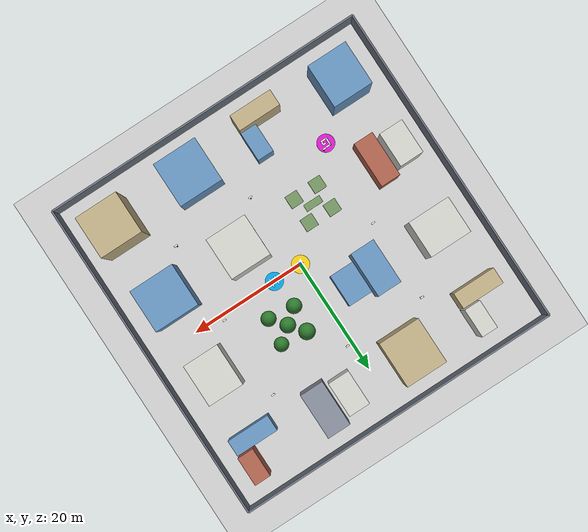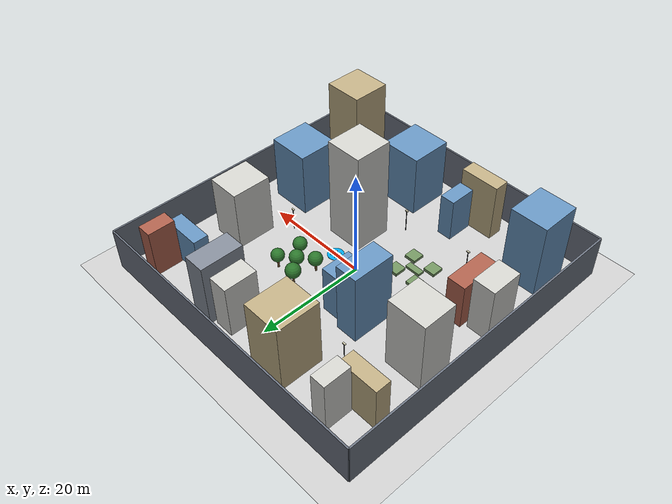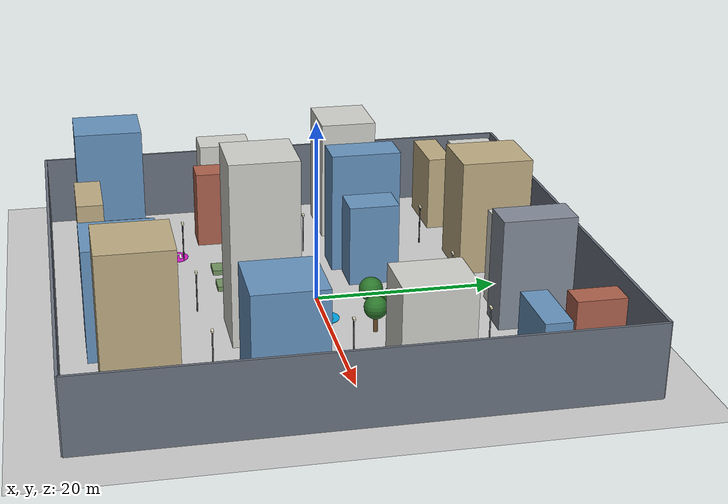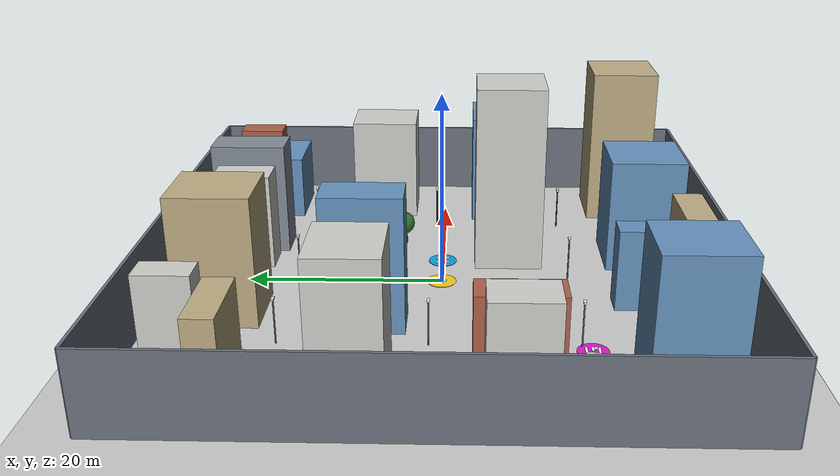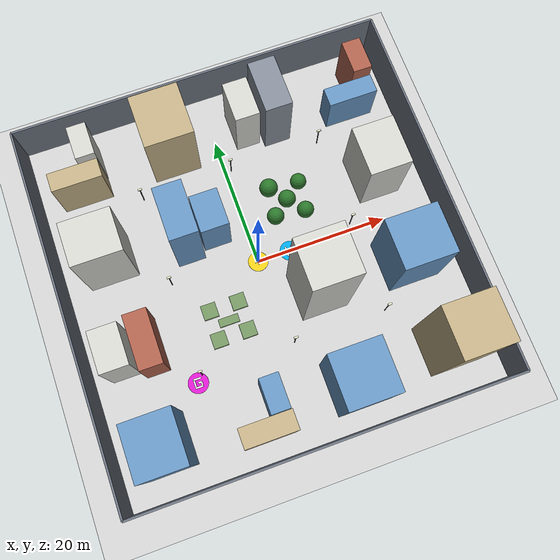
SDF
<?xml version="1.0" ?>
<sdf version="1.6">
  <world name="urban_city_course">
    <include><uri>model://sun</uri></include>
    <include><uri>model://ground_plane</uri></include>

    <!--  56m x 56m urban city blocks                            -->
    <!--  Blocks 10x10 @ {-21,-7,7,21}^2, street width 4m        -->
    <!--  Main streets: x=0 / y=0 cross, SPAWN=(0,0) intersection -->
    <!--  HOME=(5,0) [+X main street]  GOAL=(-14,-14) intersection -->
    <!--  (-7,-7)=plaza  (7,7)=park  others: single tower/twin slabs/L-shape -->

    <scene>
      <ambient>0.48 0.51 0.58 1</ambient>
      <background>0.62 0.73 0.85 1</background>
      <shadows>1</shadows>
    </scene>

    <!-- Outer perimeter walls -->
    <model name="perim_s">
      <static>true</static>
      <pose>0.000 -28.000 4.000 0 0 0</pose>
      <link name="body">
        <collision name="c"><geometry><box><size>56.000 0.300 8.000</size></box></geometry></collision>
        <visual name="v"><geometry><box><size>56.000 0.300 8.000</size></box></geometry>
          <material><ambient>0.32 0.34 0.38 1</ambient><diffuse>0.42 0.45 0.50 1</diffuse></material>
        </visual>
      </link>
    </model>
    <model name="perim_n">
      <static>true</static>
      <pose>0.000 28.000 4.000 0 0 0</pose>
      <link name="body">
        <collision name="c"><geometry><box><size>56.000 0.300 8.000</size></box></geometry></collision>
        <visual name="v"><geometry><box><size>56.000 0.300 8.000</size></box></geometry>
          <material><ambient>0.32 0.34 0.38 1</ambient><diffuse>0.42 0.45 0.50 1</diffuse></material>
        </visual>
      </link>
    </model>
    <model name="perim_w">
      <static>true</static>
      <pose>-28.000 0.000 4.000 0 0 0</pose>
      <link name="body">
        <collision name="c"><geometry><box><size>0.300 56.000 8.000</size></box></geometry></collision>
        <visual name="v"><geometry><box><size>0.300 56.000 8.000</size></box></geometry>
          <material><ambient>0.32 0.34 0.38 1</ambient><diffuse>0.42 0.45 0.50 1</diffuse></material>
        </visual>
      </link>
    </model>
    <model name="perim_e">
      <static>true</static>
      <pose>28.000 0.000 4.000 0 0 0</pose>
      <link name="body">
        <collision name="c"><geometry><box><size>0.300 56.000 8.000</size></box></geometry></collision>
        <visual name="v"><geometry><box><size>0.300 56.000 8.000</size></box></geometry>
          <material><ambient>0.32 0.34 0.38 1</ambient><diffuse>0.42 0.45 0.50 1</diffuse></material>
        </visual>
      </link>
    </model>

    <!-- Buildings (20, h 5~20m, streets kept clear) -->
    <model name="b00_tower">
      <static>true</static>
      <pose>-20.794 -20.768 7.168 0 0 0</pose>
      <link name="body">
        <collision name="c"><geometry><box><size>6.910 7.542 14.335</size></box></geometry></collision>
        <visual name="v"><geometry><box><size>6.910 7.542 14.335</size></box></geometry>
          <material><ambient>0.30 0.45 0.60 1</ambient><diffuse>0.40 0.58 0.75 1</diffuse></material>
        </visual>
      </link>
    </model>
    <model name="b01_slabA">
      <static>true</static>
      <pose>-23.200 -7.000 5.369 0 0 0</pose>
      <link name="body">
        <collision name="c"><geometry><box><size>4.124 5.987 10.737</size></box></geometry></collision>
        <visual name="v"><geometry><box><size>4.124 5.987 10.737</size></box></geometry>
          <material><ambient>0.68 0.68 0.66 1</ambient><diffuse>0.82 0.82 0.80 1</diffuse></material>
        </visual>
      </link>
    </model>
    <model name="b01_slabB">
      <static>true</static>
      <pose>-18.800 -7.000 4.387 0 0 0</pose>
      <link name="body">
        <collision name="c"><geometry><box><size>3.415 7.913 8.774</size></box></geometry></collision>
        <visual name="v"><geometry><box><size>3.415 7.913 8.774</size></box></geometry>
          <material><ambient>0.55 0.30 0.24 1</ambient><diffuse>0.68 0.38 0.30 1</diffuse></material>
        </visual>
      </link>
    </model>
    <model name="b02_tower">
      <static>true</static>
      <pose>-20.787 7.108 6.922 0 0 0</pose>
      <link name="body">
        <collision name="c"><geometry><box><size>7.232 6.339 13.843</size></box></geometry></collision>
        <visual name="v"><geometry><box><size>7.232 6.339 13.843</size></box></geometry>
          <material><ambient>0.68 0.68 0.66 1</ambient><diffuse>0.82 0.82 0.80 1</diffuse></material>
        </visual>
      </link>
    </model>
    <model name="b03_lA">
      <static>true</static>
      <pose>-21.000 18.400 4.369 0 0 0</pose>
      <link name="body">
        <collision name="c"><geometry><box><size>7.400 2.800 8.738</size></box></geometry></collision>
        <visual name="v"><geometry><box><size>7.400 2.800 8.738</size></box></geometry>
          <material><ambient>0.62 0.55 0.42 1</ambient><diffuse>0.75 0.68 0.52 1</diffuse></material>
        </visual>
      </link>
    </model>
    <model name="b03_lB">
      <static>true</static>
      <pose>-18.650 22.500 5.067 0 0 0</pose>
      <link name="body">
        <collision name="c"><geometry><box><size>2.800 5.000 10.135</size></box></geometry></collision>
        <visual name="v"><geometry><box><size>2.800 5.000 10.135</size></box></geometry>
          <material><ambient>0.68 0.68 0.66 1</ambient><diffuse>0.82 0.82 0.80 1</diffuse></material>
        </visual>
      </link>
    </model>
    <model name="b04_lA">
      <static>true</static>
      <pose>-7.000 -23.600 5.616 0 0 0</pose>
      <link name="body">
        <collision name="c"><geometry><box><size>7.400 2.800 11.231</size></box></geometry></collision>
        <visual name="v"><geometry><box><size>7.400 2.800 11.231</size></box></geometry>
          <material><ambient>0.62 0.55 0.42 1</ambient><diffuse>0.75 0.68 0.52 1</diffuse></material>
        </visual>
      </link>
    </model>
    <model name="b04_lB">
      <static>true</static>
      <pose>-4.650 -19.500 4.173 0 0 0</pose>
      <link name="body">
        <collision name="c"><geometry><box><size>2.800 5.000 8.346</size></box></geometry></collision>
        <visual name="v"><geometry><box><size>2.800 5.000 8.346</size></box></geometry>
          <material><ambient>0.30 0.45 0.60 1</ambient><diffuse>0.40 0.58 0.75 1</diffuse></material>
        </visual>
      </link>
    </model>
    <model name="b06_slabA">
      <static>true</static>
      <pose>-9.200 7.000 6.784 0 0 0</pose>
      <link name="body">
        <collision name="c"><geometry><box><size>4.142 7.753 13.568</size></box></geometry></collision>
        <visual name="v"><geometry><box><size>4.142 7.753 13.568</size></box></geometry>
          <material><ambient>0.30 0.45 0.60 1</ambient><diffuse>0.40 0.58 0.75 1</diffuse></material>
        </visual>
      </link>
    </model>
    <model name="b06_slabB">
      <static>true</static>
      <pose>-4.800 7.000 4.537 0 0 0</pose>
      <link name="body">
        <collision name="c"><geometry><box><size>4.153 5.542 9.074</size></box></geometry></collision>
        <visual name="v"><geometry><box><size>4.153 5.542 9.074</size></box></geometry>
          <material><ambient>0.30 0.45 0.60 1</ambient><diffuse>0.40 0.58 0.75 1</diffuse></material>
        </visual>
      </link>
    </model>
    <model name="b07_tower">
      <static>true</static>
      <pose>-6.842 20.983 6.545 0 0 0</pose>
      <link name="body">
        <collision name="c"><geometry><box><size>7.163 7.945 13.090</size></box></geometry></collision>
        <visual name="v"><geometry><box><size>7.163 7.945 13.090</size></box></geometry>
          <material><ambient>0.62 0.55 0.42 1</ambient><diffuse>0.75 0.68 0.52 1</diffuse></material>
        </visual>
      </link>
    </model>
    <model name="b08_tower">
      <static>true</static>
      <pose>6.885 -21.223 5.979 0 0 0</pose>
      <link name="body">
        <collision name="c"><geometry><box><size>7.631 7.761 11.959</size></box></geometry></collision>
        <visual name="v"><geometry><box><size>7.631 7.761 11.959</size></box></geometry>
          <material><ambient>0.30 0.45 0.60 1</ambient><diffuse>0.40 0.58 0.75 1</diffuse></material>
        </visual>
      </link>
    </model>
    <model name="b09_tower">
      <static>true</static>
      <pose>6.602 -6.998 9.782 0 0 0</pose>
      <link name="body">
        <collision name="c"><geometry><box><size>6.919 7.094 19.564</size></box></geometry></collision>
        <visual name="v"><geometry><box><size>6.919 7.094 19.564</size></box></geometry>
          <material><ambient>0.68 0.68 0.66 1</ambient><diffuse>0.82 0.82 0.80 1</diffuse></material>
        </visual>
      </link>
    </model>
    <model name="b11_slabA">
      <static>true</static>
      <pose>4.800 21.000 5.090 0 0 0</pose>
      <link name="body">
        <collision name="c"><geometry><box><size>3.694 6.032 10.181</size></box></geometry></collision>
        <visual name="v"><geometry><box><size>3.694 6.032 10.181</size></box></geometry>
          <material><ambient>0.68 0.68 0.66 1</ambient><diffuse>0.82 0.82 0.80 1</diffuse></material>
        </visual>
      </link>
    </model>
    <model name="b11_slabB">
      <static>true</static>
      <pose>9.200 21.000 6.019 0 0 0</pose>
      <link name="body">
        <collision name="c"><geometry><box><size>4.012 7.856 12.038</size></box></geometry></collision>
        <visual name="v"><geometry><box><size>4.012 7.856 12.038</size></box></geometry>
          <material><ambient>0.42 0.44 0.48 1</ambient><diffuse>0.52 0.55 0.60 1</diffuse></material>
        </visual>
      </link>
    </model>
    <model name="b12_tower">
      <static>true</static>
      <pose>21.199 -20.598 8.759 0 0 0</pose>
      <link name="body">
        <collision name="c"><geometry><box><size>7.332 7.240 17.518</size></box></geometry></collision>
        <visual name="v"><geometry><box><size>7.332 7.240 17.518</size></box></geometry>
          <material><ambient>0.62 0.55 0.42 1</ambient><diffuse>0.75 0.68 0.52 1</diffuse></material>
        </visual>
      </link>
    </model>
    <model name="b13_tower">
      <static>true</static>
      <pose>20.518 -6.950 6.193 0 0 0</pose>
      <link name="body">
        <collision name="c"><geometry><box><size>7.735 7.444 12.387</size></box></geometry></collision>
        <visual name="v"><geometry><box><size>7.735 7.444 12.387</size></box></geometry>
          <material><ambient>0.30 0.45 0.60 1</ambient><diffuse>0.40 0.58 0.75 1</diffuse></material>
        </visual>
      </link>
    </model>
    <model name="b14_tower">
      <static>true</static>
      <pose>20.743 7.124 5.768 0 0 0</pose>
      <link name="body">
        <collision name="c"><geometry><box><size>6.196 7.332 11.535</size></box></geometry></collision>
        <visual name="v"><geometry><box><size>6.196 7.332 11.535</size></box></geometry>
          <material><ambient>0.68 0.68 0.66 1</ambient><diffuse>0.82 0.82 0.80 1</diffuse></material>
        </visual>
      </link>
    </model>
    <model name="b15_lA">
      <static>true</static>
      <pose>21.000 18.400 3.591 0 0 0</pose>
      <link name="body">
        <collision name="c"><geometry><box><size>7.400 2.800 7.182</size></box></geometry></collision>
        <visual name="v"><geometry><box><size>7.400 2.800 7.182</size></box></geometry>
          <material><ambient>0.30 0.45 0.60 1</ambient><diffuse>0.40 0.58 0.75 1</diffuse></material>
        </visual>
      </link>
    </model>
    <model name="b15_lB">
      <static>true</static>
      <pose>23.350 22.500 4.612 0 0 0</pose>
      <link name="body">
        <collision name="c"><geometry><box><size>2.800 5.000 9.224</size></box></geometry></collision>
        <visual name="v"><geometry><box><size>2.800 5.000 9.224</size></box></geometry>
          <material><ambient>0.55 0.30 0.24 1</ambient><diffuse>0.68 0.38 0.30 1</diffuse></material>
        </visual>
      </link>
    </model>

    <!-- Plaza block (-7, -7): planters + low stage (can fly over) -->
    <model name="plaza_planter_0">
      <static>true</static>
      <pose>-9.200 -9.200 0.275 0 0 0</pose>
      <link name="body">
        <collision name="c"><geometry><box><size>2.200 2.200 0.550</size></box></geometry></collision>
        <visual name="v"><geometry><box><size>2.200 2.200 0.550</size></box></geometry>
          <material><ambient>0.35 0.45 0.30 1</ambient><diffuse>0.45 0.58 0.38 1</diffuse></material>
        </visual>
      </link>
    </model>
    <model name="plaza_planter_1">
      <static>true</static>
      <pose>-4.800 -9.200 0.275 0 0 0</pose>
      <link name="body">
        <collision name="c"><geometry><box><size>2.200 2.200 0.550</size></box></geometry></collision>
        <visual name="v"><geometry><box><size>2.200 2.200 0.550</size></box></geometry>
          <material><ambient>0.35 0.45 0.30 1</ambient><diffuse>0.45 0.58 0.38 1</diffuse></material>
        </visual>
      </link>
    </model>
    <model name="plaza_planter_2">
      <static>true</static>
      <pose>-9.200 -4.800 0.275 0 0 0</pose>
      <link name="body">
        <collision name="c"><geometry><box><size>2.200 2.200 0.550</size></box></geometry></collision>
        <visual name="v"><geometry><box><size>2.200 2.200 0.550</size></box></geometry>
          <material><ambient>0.35 0.45 0.30 1</ambient><diffuse>0.45 0.58 0.38 1</diffuse></material>
        </visual>
      </link>
    </model>
    <model name="plaza_planter_3">
      <static>true</static>
      <pose>-4.800 -4.800 0.275 0 0 0</pose>
      <link name="body">
        <collision name="c"><geometry><box><size>2.200 2.200 0.550</size></box></geometry></collision>
        <visual name="v"><geometry><box><size>2.200 2.200 0.550</size></box></geometry>
          <material><ambient>0.35 0.45 0.30 1</ambient><diffuse>0.45 0.58 0.38 1</diffuse></material>
        </visual>
      </link>
    </model>
    <model name="plaza_stage">
      <static>true</static>
      <pose>-7.000 -7.000 0.225 0 0 0</pose>
      <link name="body">
        <collision name="c"><geometry><box><size>3.000 1.200 0.450</size></box></geometry></collision>
        <visual name="v"><geometry><box><size>3.000 1.200 0.450</size></box></geometry>
          <material><ambient>0.35 0.45 0.30 1</ambient><diffuse>0.45 0.58 0.38 1</diffuse></material>
        </visual>
      </link>
    </model>

    <!-- Park block (7, 7): low trees h=3 (can fly over at 4m altitude) -->
    <model name="park_tree_0">
      <static>true</static>
      <pose>4.500 5.000 0 0 0 0</pose>
      <link name="link">
        <collision name="trunk_c">
          <pose>0 0 1.500 0 0 0</pose>
          <geometry><cylinder><radius>0.184</radius><length>3.000</length></cylinder></geometry>
        </collision>
        <visual name="trunk_v">
          <pose>0 0 1.500 0 0 0</pose>
          <geometry><cylinder><radius>0.184</radius><length>3.000</length></cylinder></geometry>
          <material><ambient>0.32 0.22 0.12 1</ambient><diffuse>0.42 0.30 0.16 1</diffuse></material>
        </visual>
        <visual name="canopy_v">
          <pose>0 0 2.744 0 0 0</pose>
          <geometry><sphere><radius>1.281</radius></sphere></geometry>
          <material><ambient>0.12 0.35 0.12 1</ambient><diffuse>0.17 0.46 0.17 1</diffuse></material>
        </visual>
      </link>
    </model>
    <model name="park_tree_1">
      <static>true</static>
      <pose>9.000 4.500 0 0 0 0</pose>
      <link name="link">
        <collision name="trunk_c">
          <pose>0 0 1.500 0 0 0</pose>
          <geometry><cylinder><radius>0.237</radius><length>3.000</length></cylinder></geometry>
        </collision>
        <visual name="trunk_v">
          <pose>0 0 1.500 0 0 0</pose>
          <geometry><cylinder><radius>0.237</radius><length>3.000</length></cylinder></geometry>
          <material><ambient>0.32 0.22 0.12 1</ambient><diffuse>0.42 0.30 0.16 1</diffuse></material>
        </visual>
        <visual name="canopy_v">
          <pose>0 0 2.749 0 0 0</pose>
          <geometry><sphere><radius>1.257</radius></sphere></geometry>
          <material><ambient>0.12 0.35 0.12 1</ambient><diffuse>0.17 0.46 0.17 1</diffuse></material>
        </visual>
      </link>
    </model>
    <model name="park_tree_2">
      <static>true</static>
      <pose>7.000 7.000 0 0 0 0</pose>
      <link name="link">
        <collision name="trunk_c">
          <pose>0 0 1.500 0 0 0</pose>
          <geometry><cylinder><radius>0.249</radius><length>3.000</length></cylinder></geometry>
        </collision>
        <visual name="trunk_v">
          <pose>0 0 1.500 0 0 0</pose>
          <geometry><cylinder><radius>0.249</radius><length>3.000</length></cylinder></geometry>
          <material><ambient>0.32 0.22 0.12 1</ambient><diffuse>0.42 0.30 0.16 1</diffuse></material>
        </visual>
        <visual name="canopy_v">
          <pose>0 0 2.739 0 0 0</pose>
          <geometry><sphere><radius>1.307</radius></sphere></geometry>
          <material><ambient>0.12 0.35 0.12 1</ambient><diffuse>0.17 0.46 0.17 1</diffuse></material>
        </visual>
      </link>
    </model>
    <model name="park_tree_3">
      <static>true</static>
      <pose>5.000 9.500 0 0 0 0</pose>
      <link name="link">
        <collision name="trunk_c">
          <pose>0 0 1.500 0 0 0</pose>
          <geometry><cylinder><radius>0.181</radius><length>3.000</length></cylinder></geometry>
        </collision>
        <visual name="trunk_v">
          <pose>0 0 1.500 0 0 0</pose>
          <geometry><cylinder><radius>0.181</radius><length>3.000</length></cylinder></geometry>
          <material><ambient>0.32 0.22 0.12 1</ambient><diffuse>0.42 0.30 0.16 1</diffuse></material>
        </visual>
        <visual name="canopy_v">
          <pose>0 0 2.725 0 0 0</pose>
          <geometry><sphere><radius>1.376</radius></sphere></geometry>
          <material><ambient>0.12 0.35 0.12 1</ambient><diffuse>0.17 0.46 0.17 1</diffuse></material>
        </visual>
      </link>
    </model>
    <model name="park_tree_4">
      <static>true</static>
      <pose>9.500 9.000 0 0 0 0</pose>
      <link name="link">
        <collision name="trunk_c">
          <pose>0 0 1.500 0 0 0</pose>
          <geometry><cylinder><radius>0.193</radius><length>3.000</length></cylinder></geometry>
        </collision>
        <visual name="trunk_v">
          <pose>0 0 1.500 0 0 0</pose>
          <geometry><cylinder><radius>0.193</radius><length>3.000</length></cylinder></geometry>
          <material><ambient>0.32 0.22 0.12 1</ambient><diffuse>0.42 0.30 0.16 1</diffuse></material>
        </visual>
        <visual name="canopy_v">
          <pose>0 0 2.759 0 0 0</pose>
          <geometry><sphere><radius>1.206</radius></sphere></geometry>
          <material><ambient>0.12 0.35 0.12 1</ambient><diffuse>0.17 0.46 0.17 1</diffuse></material>
        </visual>
      </link>
    </model>

    <!-- Street lamps (8, at intersections, pole h=4.5 has collision) -->
    <model name="lamp_00">
      <static>true</static>
      <pose>-13.100 0.900 0 0 0 0</pose>
      <link name="link">
        <collision name="pole_c">
          <pose>0 0 2.25 0 0 0</pose>
          <geometry><cylinder><radius>0.07</radius><length>4.5</length></cylinder></geometry>
        </collision>
        <visual name="pole_v">
          <pose>0 0 2.25 0 0 0</pose>
          <geometry><cylinder><radius>0.07</radius><length>4.5</length></cylinder></geometry>
          <material><ambient>0.25 0.26 0.28 1</ambient><diffuse>0.35 0.36 0.38 1</diffuse></material>
        </visual>
        <visual name="head_v">
          <pose>0 0 4.55 0 0 0</pose>
          <geometry><box><size>0.6 0.25 0.18</size></box></geometry>
          <material><ambient>0.9 0.88 0.7 1</ambient><diffuse>0.95 0.93 0.8 1</diffuse><emissive>0.5 0.48 0.3 1</emissive></material>
        </visual>
      </link>
    </model>
    <model name="lamp_01">
      <static>true</static>
      <pose>-13.100 -13.100 0 0 0 0</pose>
      <link name="link">
        <collision name="pole_c">
          <pose>0 0 2.25 0 0 0</pose>
          <geometry><cylinder><radius>0.07</radius><length>4.5</length></cylinder></geometry>
        </collision>
        <visual name="pole_v">
          <pose>0 0 2.25 0 0 0</pose>
          <geometry><cylinder><radius>0.07</radius><length>4.5</length></cylinder></geometry>
          <material><ambient>0.25 0.26 0.28 1</ambient><diffuse>0.35 0.36 0.38 1</diffuse></material>
        </visual>
        <visual name="head_v">
          <pose>0 0 4.55 0 0 0</pose>
          <geometry><box><size>0.6 0.25 0.18</size></box></geometry>
          <material><ambient>0.9 0.88 0.7 1</ambient><diffuse>0.95 0.93 0.8 1</diffuse><emissive>0.5 0.48 0.3 1</emissive></material>
        </visual>
      </link>
    </model>
    <model name="lamp_02">
      <static>true</static>
      <pose>-13.100 14.900 0 0 0 0</pose>
      <link name="link">
        <collision name="pole_c">
          <pose>0 0 2.25 0 0 0</pose>
          <geometry><cylinder><radius>0.07</radius><length>4.5</length></cylinder></geometry>
        </collision>
        <visual name="pole_v">
          <pose>0 0 2.25 0 0 0</pose>
          <geometry><cylinder><radius>0.07</radius><length>4.5</length></cylinder></geometry>
          <material><ambient>0.25 0.26 0.28 1</ambient><diffuse>0.35 0.36 0.38 1</diffuse></material>
        </visual>
        <visual name="head_v">
          <pose>0 0 4.55 0 0 0</pose>
          <geometry><box><size>0.6 0.25 0.18</size></box></geometry>
          <material><ambient>0.9 0.88 0.7 1</ambient><diffuse>0.95 0.93 0.8 1</diffuse><emissive>0.5 0.48 0.3 1</emissive></material>
        </visual>
      </link>
    </model>
    <model name="lamp_03">
      <static>true</static>
      <pose>14.900 0.900 0 0 0 0</pose>
      <link name="link">
        <collision name="pole_c">
          <pose>0 0 2.25 0 0 0</pose>
          <geometry><cylinder><radius>0.07</radius><length>4.5</length></cylinder></geometry>
        </collision>
        <visual name="pole_v">
          <pose>0 0 2.25 0 0 0</pose>
          <geometry><cylinder><radius>0.07</radius><length>4.5</length></cylinder></geometry>
          <material><ambient>0.25 0.26 0.28 1</ambient><diffuse>0.35 0.36 0.38 1</diffuse></material>
        </visual>
        <visual name="head_v">
          <pose>0 0 4.55 0 0 0</pose>
          <geometry><box><size>0.6 0.25 0.18</size></box></geometry>
          <material><ambient>0.9 0.88 0.7 1</ambient><diffuse>0.95 0.93 0.8 1</diffuse><emissive>0.5 0.48 0.3 1</emissive></material>
        </visual>
      </link>
    </model>
    <model name="lamp_04">
      <static>true</static>
      <pose>14.900 -13.100 0 0 0 0</pose>
      <link name="link">
        <collision name="pole_c">
          <pose>0 0 2.25 0 0 0</pose>
          <geometry><cylinder><radius>0.07</radius><length>4.5</length></cylinder></geometry>
        </collision>
        <visual name="pole_v">
          <pose>0 0 2.25 0 0 0</pose>
          <geometry><cylinder><radius>0.07</radius><length>4.5</length></cylinder></geometry>
          <material><ambient>0.25 0.26 0.28 1</ambient><diffuse>0.35 0.36 0.38 1</diffuse></material>
        </visual>
        <visual name="head_v">
          <pose>0 0 4.55 0 0 0</pose>
          <geometry><box><size>0.6 0.25 0.18</size></box></geometry>
          <material><ambient>0.9 0.88 0.7 1</ambient><diffuse>0.95 0.93 0.8 1</diffuse><emissive>0.5 0.48 0.3 1</emissive></material>
        </visual>
      </link>
    </model>
    <model name="lamp_05">
      <static>true</static>
      <pose>14.900 14.900 0 0 0 0</pose>
      <link name="link">
        <collision name="pole_c">
          <pose>0 0 2.25 0 0 0</pose>
          <geometry><cylinder><radius>0.07</radius><length>4.5</length></cylinder></geometry>
        </collision>
        <visual name="pole_v">
          <pose>0 0 2.25 0 0 0</pose>
          <geometry><cylinder><radius>0.07</radius><length>4.5</length></cylinder></geometry>
          <material><ambient>0.25 0.26 0.28 1</ambient><diffuse>0.35 0.36 0.38 1</diffuse></material>
        </visual>
        <visual name="head_v">
          <pose>0 0 4.55 0 0 0</pose>
          <geometry><box><size>0.6 0.25 0.18</size></box></geometry>
          <material><ambient>0.9 0.88 0.7 1</ambient><diffuse>0.95 0.93 0.8 1</diffuse><emissive>0.5 0.48 0.3 1</emissive></material>
        </visual>
      </link>
    </model>
    <model name="lamp_06">
      <static>true</static>
      <pose>0.900 -13.100 0 0 0 0</pose>
      <link name="link">
        <collision name="pole_c">
          <pose>0 0 2.25 0 0 0</pose>
          <geometry><cylinder><radius>0.07</radius><length>4.5</length></cylinder></geometry>
        </collision>
        <visual name="pole_v">
          <pose>0 0 2.25 0 0 0</pose>
          <geometry><cylinder><radius>0.07</radius><length>4.5</length></cylinder></geometry>
          <material><ambient>0.25 0.26 0.28 1</ambient><diffuse>0.35 0.36 0.38 1</diffuse></material>
        </visual>
        <visual name="head_v">
          <pose>0 0 4.55 0 0 0</pose>
          <geometry><box><size>0.6 0.25 0.18</size></box></geometry>
          <material><ambient>0.9 0.88 0.7 1</ambient><diffuse>0.95 0.93 0.8 1</diffuse><emissive>0.5 0.48 0.3 1</emissive></material>
        </visual>
      </link>
    </model>
    <model name="lamp_07">
      <static>true</static>
      <pose>0.900 14.900 0 0 0 0</pose>
      <link name="link">
        <collision name="pole_c">
          <pose>0 0 2.25 0 0 0</pose>
          <geometry><cylinder><radius>0.07</radius><length>4.5</length></cylinder></geometry>
        </collision>
        <visual name="pole_v">
          <pose>0 0 2.25 0 0 0</pose>
          <geometry><cylinder><radius>0.07</radius><length>4.5</length></cylinder></geometry>
          <material><ambient>0.25 0.26 0.28 1</ambient><diffuse>0.35 0.36 0.38 1</diffuse></material>
        </visual>
        <visual name="head_v">
          <pose>0 0 4.55 0 0 0</pose>
          <geometry><box><size>0.6 0.25 0.18</size></box></geometry>
          <material><ambient>0.9 0.88 0.7 1</ambient><diffuse>0.95 0.93 0.8 1</diffuse><emissive>0.5 0.48 0.3 1</emissive></material>
        </visual>
      </link>
    </model>

    <!-- SPAWN: (0.0,0.0) - yellow disc + white cross -->
    <model name="spawn_marker">
      <static>true</static>
      <pose>0.00 0.00 0 0 0 0</pose>
      <link name="link">
        <visual name="disc">
          <pose>0 0 0.025 0 0 0</pose>
          <geometry><cylinder><radius>1.5</radius><length>0.05</length></cylinder></geometry>
          <material>
            <ambient>0.95 0.8 0.1 1</ambient><diffuse>0.95 0.8 0.1 1</diffuse>
            <specular>0.1 0.1 0.1 1</specular><emissive>0.95 0.8 0.1 1</emissive>
          </material>
        </visual>
        <visual name="plus_h">
          <pose>0 0 0.1 0 0 0</pose>
          <geometry><box><size>1.0 0.2 0.1</size></box></geometry>
          <material><ambient>1 1 1 1</ambient><diffuse>1 1 1 1</diffuse><emissive>0.4 0.4 0.4 1</emissive></material>
        </visual>
        <visual name="plus_v">
          <pose>0 0 0.1 0 0 0</pose>
          <geometry><box><size>0.2 1.0 0.1</size></box></geometry>
          <material><ambient>1 1 1 1</ambient><diffuse>1 1 1 1</diffuse><emissive>0.4 0.4 0.4 1</emissive></material>
        </visual>
      </link>
    </model>

    <!-- HOME: (5.0,0.0) - cyan disc + white H -->
    <model name="home_marker">
      <static>true</static>
      <pose>5.00 0.00 0 0 0 0</pose>
      <link name="link">
        <visual name="disc">
          <pose>0 0 0.025 0 0 0</pose>
          <geometry><cylinder><radius>1.5</radius><length>0.05</length></cylinder></geometry>
          <material>
            <ambient>0.0 0.65 0.9 1</ambient><diffuse>0.0 0.65 0.9 1</diffuse>
            <specular>0.1 0.1 0.1 1</specular><emissive>0.0 0.65 0.9 1</emissive>
          </material>
        </visual>
        <visual name="h_left">
          <pose>-0.475 0 0.1 0 0 0</pose>
          <geometry><box><size>0.25 1.45 0.1</size></box></geometry>
          <material><ambient>1 1 1 1</ambient><diffuse>1 1 1 1</diffuse><emissive>0.4 0.4 0.4 1</emissive></material>
        </visual>
        <visual name="h_right">
          <pose>0.475 0 0.1 0 0 0</pose>
          <geometry><box><size>0.25 1.45 0.1</size></box></geometry>
          <material><ambient>1 1 1 1</ambient><diffuse>1 1 1 1</diffuse><emissive>0.4 0.4 0.4 1</emissive></material>
        </visual>
        <visual name="h_mid">
          <pose>0 0 0.1 0 0 0</pose>
          <geometry><box><size>0.7 0.25 0.1</size></box></geometry>
          <material><ambient>1 1 1 1</ambient><diffuse>1 1 1 1</diffuse><emissive>0.4 0.4 0.4 1</emissive></material>
        </visual>
      </link>
    </model>

    <!-- GOAL: (-14.0,-14.0) - magenta disc + white G -->
    <model name="goal_marker">
      <static>true</static>
      <pose>-14.00 -14.00 0 0 0 0</pose>
      <link name="link">
        <visual name="disc">
          <pose>0 0 0.025 0 0 0</pose>
          <geometry><cylinder><radius>1.5</radius><length>0.05</length></cylinder></geometry>
          <material>
            <ambient>0.85 0.1 0.8 1</ambient><diffuse>0.85 0.1 0.8 1</diffuse>
            <specular>0.1 0.1 0.1 1</specular><emissive>0.85 0.1 0.8 1</emissive>
          </material>
        </visual>
        <visual name="g_top">
          <pose>0 0.6 0.1 0 0 0</pose>
          <geometry><box><size>1.2 0.25 0.1</size></box></geometry>
          <material><ambient>1 1 1 1</ambient><diffuse>1 1 1 1</diffuse><emissive>0.4 0.4 0.4 1</emissive></material>
        </visual>
        <visual name="g_left">
          <pose>-0.475 0 0.1 0 0 0</pose>
          <geometry><box><size>0.25 1.45 0.1</size></box></geometry>
          <material><ambient>1 1 1 1</ambient><diffuse>1 1 1 1</diffuse><emissive>0.4 0.4 0.4 1</emissive></material>
        </visual>
        <visual name="g_bottom">
          <pose>0 -0.6 0.1 0 0 0</pose>
          <geometry><box><size>1.2 0.25 0.1</size></box></geometry>
          <material><ambient>1 1 1 1</ambient><diffuse>1 1 1 1</diffuse><emissive>0.4 0.4 0.4 1</emissive></material>
        </visual>
        <visual name="g_right_lower">
          <pose>0.475 -0.3 0.1 0 0 0</pose>
          <geometry><box><size>0.25 0.6 0.1</size></box></geometry>
          <material><ambient>1 1 1 1</ambient><diffuse>1 1 1 1</diffuse><emissive>0.4 0.4 0.4 1</emissive></material>
        </visual>
        <visual name="g_mid_stub">
          <pose>0.3 0 0.1 0 0 0</pose>
          <geometry><box><size>0.6 0.25 0.1</size></box></geometry>
          <material><ambient>1 1 1 1</ambient><diffuse>1 1 1 1</diffuse><emissive>0.4 0.4 0.4 1</emissive></material>
        </visual>
      </link>
    </model>
  </world>
</sdf>
